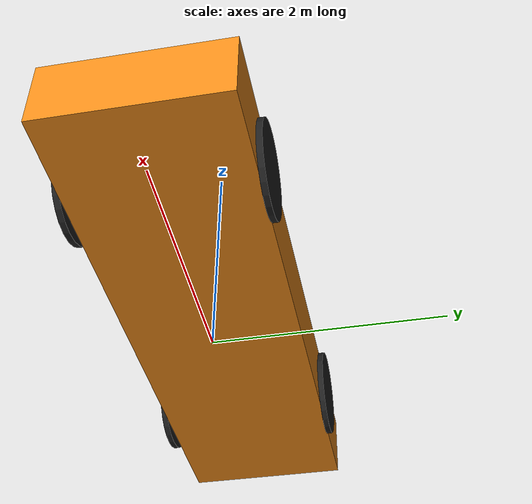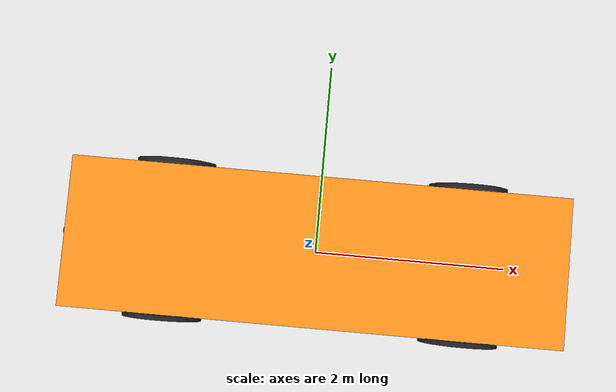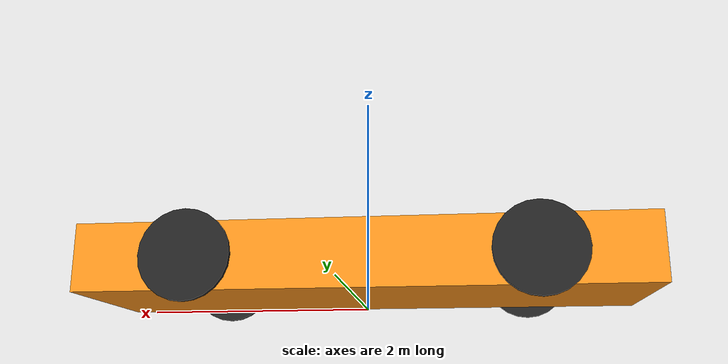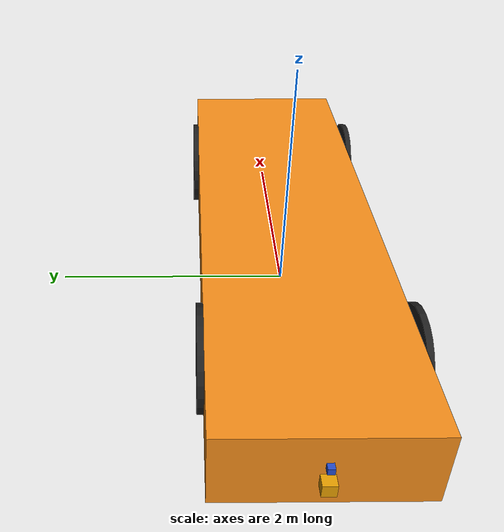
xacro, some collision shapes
<?xml version="1.0"?>

<robot name="mybot" xmlns:xacro="http://www.ros.org/wiki/xacro">

  <xacro:property name="PI" value="3.1415926535897931"/>

  <xacro:property name="chassisHeight" value="0.6"/>
  <xacro:property name="chassisLength" value="6"/>
  <xacro:property name="chassisWidth" value="1.5"/>
  <xacro:property name="chassisMass" value="0.05"/>

  <xacro:property name="casterRadius" value="0.05"/>
  <xacro:property name="casterMass" value="0.01"/>

  <xacro:property name="wheelWidth" value="0.05"/>
  <xacro:property name="wheelRadius" value="0.4"/>
  <xacro:property name="wheelPos" value="4"/>
  <xacro:property name="wheelMass" value="25"/>

  <xacro:property name="cameraSize" value="0.05"/>
  <xacro:property name="cameraMass" value="0.01"/>

  <xacro:include filename="$(find mybot_description)/urdf/mybot.gazebo" />
  <xacro:include filename="$(find mybot_description)/urdf/materials.xacro" />
  <xacro:include filename="$(find mybot_description)/urdf/macros.xacro" />

<link name="footprint" />

  <joint name="base_joint" type="fixed">
    <parent link="footprint"/>
    <child link="chassis"/>
  </joint>

  <link name="chassis">
    <collision>
      <origin xyz="0 0 ${wheelRadius}" rpy="0 0 0"/>
      <geometry>
    <box size="${chassisLength-1} ${chassisWidth} ${chassisHeight}"/>
      </geometry>
    </collision>

    <visual name="visual">

      <origin xyz="-0.78 0.75 0" rpy="0 0 ${PI/2}"/>
      <geometry>
        <mesh filename="/home/kpit/.gazebo/models/car_volvo/meshes/volvo.dae">
        </mesh>
      </geometry>
      <material name="orange"/>
    </visual>

    <inertial>
      <origin xyz="0 0 ${wheelRadius}" rpy="0 0 0"/>
      <mass value="${chassisMass}"/>
      <box_inertia m="${chassisMass}" x="${chassisLength}" y="${chassisWidth}" z="${chassisHeight}"/>
    </inertial>
  </link>

  <wheel lr="leftf" tY="-1" fb="1" f_factor="0" m_factor="0.1"/>
  <wheel lr="rightf" tY="1" fb="1" f_factor="0" m_factor="0.1" />
  <wheel lr="leftb" tY="-1" fb="-1" f_factor="1000000" m_factor="1"/>
  <wheel lr="rightb" tY="1" fb="-1" f_factor="1000000" m_factor="1"/>

  <joint name="camera_joint" type="fixed">
    <origin xyz="2.43 0 ${cameraSize+wheelRadius+cameraSize/2}" rpy="0 0 0"/>
    <parent link="chassis"/>
    <child link="back_camera"/>
  </joint>

<!--  First Back camera  -->
  <link name="back_camera">
    <collision>
      <origin xyz="0 0 0" rpy="0 0 0"/>
      <geometry>
  <box size="${cameraSize} ${cameraSize} ${cameraSize}"/>
      </geometry>
    </collision>

    <visual>
      <origin xyz="0 0 0" rpy="0 0 0"/>
      <geometry>

  <box size="${cameraSize} ${cameraSize} ${cameraSize}"/>
      </geometry>
      <material name="blue"/>
    </visual>

    <inertial>
      <mass value="${cameraMass}" />
      <origin xyz="0 0 0" rpy="0 0 0"/>
      <box_inertia m="${cameraMass}" x="${cameraSize}" y="${cameraSize}" z="${cameraSize}" />
    </inertial>
  </link>
<!--  Front camera  -->
<joint name="camera2_joint" type="fixed">
    <origin xyz="-2.54 0 ${cameraSize+wheelRadius+cameraSize/2}" rpy="0 0 ${PI}"/>
    <parent link="chassis"/>
    <child link="front_camera"/>
  </joint>

<link name="front_camera">
    <collision>
      <origin xyz="0 0 0" rpy="0 0 ${PI}"/>
      <geometry>
  <box size="${cameraSize} ${cameraSize} ${cameraSize}"/>
      </geometry>
    </collision>

    <visual>
      <origin xyz="0 0 0" rpy="0 0 ${PI}"/>
      <geometry>

  <box size="${cameraSize} ${cameraSize} ${cameraSize}"/>
      </geometry>
      <material name="blue"/>
    </visual>

    <inertial>
      <mass value="${cameraMass}" />
      <origin xyz="0 0 0" rpy="0 0 ${PI}"/>
      <box_inertia m="${cameraMass}" x="${cameraSize}" y="${cameraSize}" z="${cameraSize}" />
    </inertial>
  </link>

<joint name="hokuyo_joint" type="fixed">
    <origin xyz="-2.54 0 ${cameraSize+wheelRadius+cameraSize/2-0.15}" rpy="0 0 ${PI}"/>
    <parent link="chassis"/>
    <child link="hokuyo_link"/>
  </joint>

 <!-- Hokuyo Laser -->
  <link name="hokuyo_link">
    <collision>
      <origin xyz="0 0 0" rpy="0 0 0"/>
      <geometry>
    <box size="0.1 0.1 0.1"/>
      </geometry>
    </collision>

    <visual>
      <origin xyz="0 0 0" rpy="0 0 0"/>
      <geometry>
        <mesh filename="hokuyo.dae" />
      </geometry>
    </visual>

    <inertial>
      <mass value="1e-5" />
      <origin xyz="0 0 0" rpy="0 0 0"/>
      <inertia ixx="1e-6" ixy="0" ixz="0" iyy="1e-6" iyz="0" izz="1e-6" />
    </inertial>
  </link>

</robot>

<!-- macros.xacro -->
<robot>
     <macro name="cylinder_inertia" params="m r h">
        <inertia  ixx="${m*(3*r*r+h*h)/12}" ixy = "0" ixz = "0"
                  iyy="${m*(3*r*r+h*h)/12}" iyz = "0"
                  izz="${m*r*r/2}" />
      </macro>

      <macro name="box_inertia" params="m x y z">
        <inertia  ixx="${m*(y*y+z*z)/12}" ixy = "0" ixz = "0"
                  iyy="${m*(x*x+z*z)/12}" iyz = "0"
                  izz="${m*(x*x+z*z)/12}" />
      </macro>

      <macro name="sphere_inertia" params="m r">
        <inertia  ixx="${2*m*r*r/5}" ixy = "0" ixz = "0"
                  iyy="${2*m*r*r/5}" iyz = "0"
                  izz="${2*m*r*r/5}" />
      </macro>

     <macro name="wheel" params="lr tY fb f_factor m_factor">

       <link name="${lr}_wheel">
        <collision>
          <origin xyz="0 0 0" rpy="0 ${PI/2} ${PI/2}" />
          <geometry>
           <cylinder length="${wheelWidth}" radius="${wheelRadius}"/>
          </geometry>
        </collision>

        <visual>
          <origin xyz="0 0 0" rpy="0 ${PI/2} ${PI/2}" />
          <geometry>
           <cylinder length="${wheelWidth}" radius="${wheelRadius}"/>
          </geometry>
          <material name="black"/>
        </visual>

        <inertial>
          <origin xyz="0 0 0" rpy="0 ${PI/2} ${PI/2}" />
          <mass value="${wheelMass*m_factor}"/>
          <cylinder_inertia m="${wheelMass*m_factor}" r="${wheelRadius}" h="${wheelWidth}"/>
        </inertial>
       </link>

        <gazebo reference="${lr}_wheel">
          <mu1 value="${f_factor}"/>
          <mu2 value="${f_factor}"/>
          <kp  value="10000000.0" />
          <kd  value="1.0" />
          <fdir1 value="1 0 0"/>
          <material>Gazebo/Black</material>
        </gazebo>

       <joint name="${lr}_wheel_hinge" type="continuous">
          <parent link="chassis"/>
          <child link="${lr}_wheel"/>
          <origin xyz="${-fb*chassisLength/4} ${tY*wheelWidth/2+tY*chassisWidth/2}  ${wheelRadius}" rpy="0 0 0" />
          <axis xyz="0 -1 0" rpy="0 0 0" />
          <limit effort="100" velocity="100"/>
          <joint_properties damping="0.0" friction="0.0"/>
        </joint>

      <transmission name="${lr}_trans">
        <type>transmission_interface/SimpleTransmission</type>
        <joint name="${lr}_wheel_hinge">
 	            <hardwareInterface>EffortJointInterface</hardwareInterface>
	      </joint>
        <actuator name="${lr}Motor">
          <hardwareInterface>EffortJointInterface</hardwareInterface>
          <mechanicalReduction>10</mechanicalReduction>
        </actuator>
      </transmission>

     </macro>
</robot>
